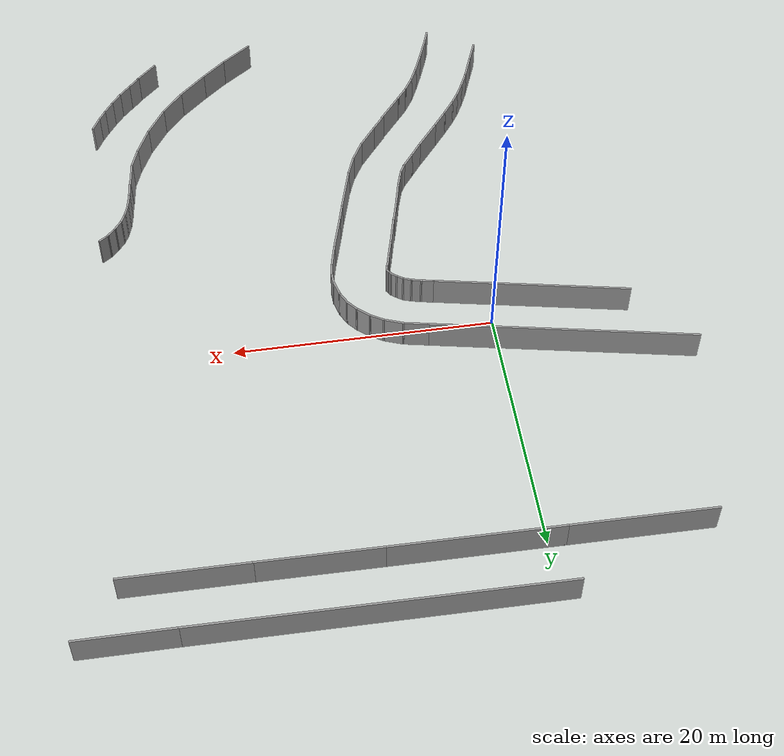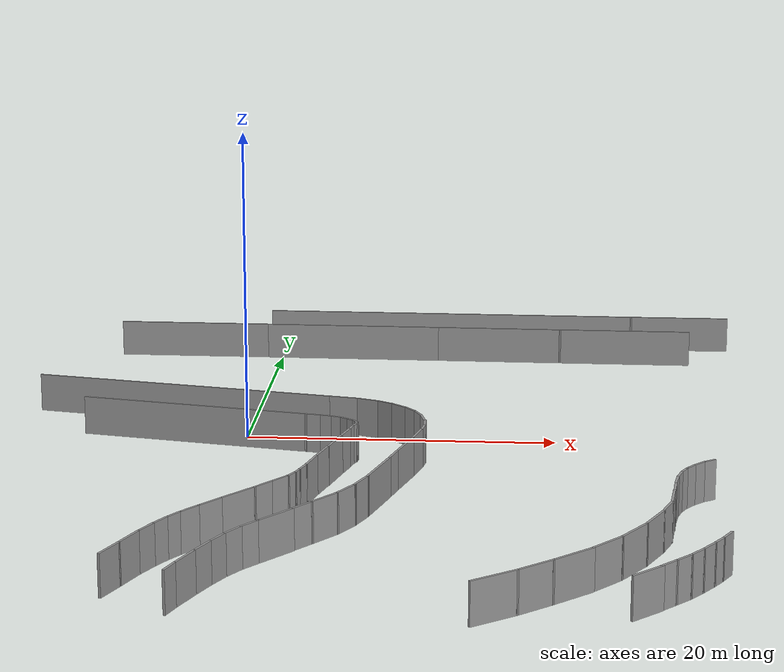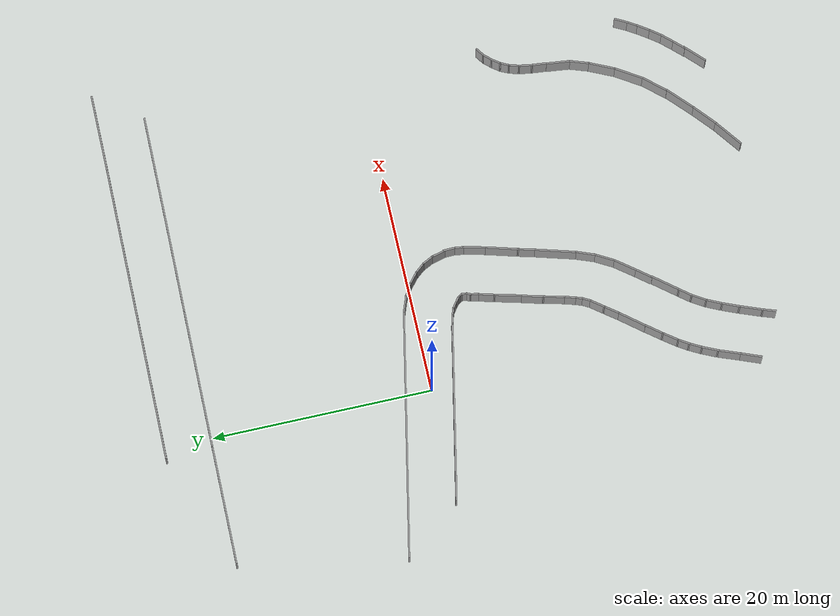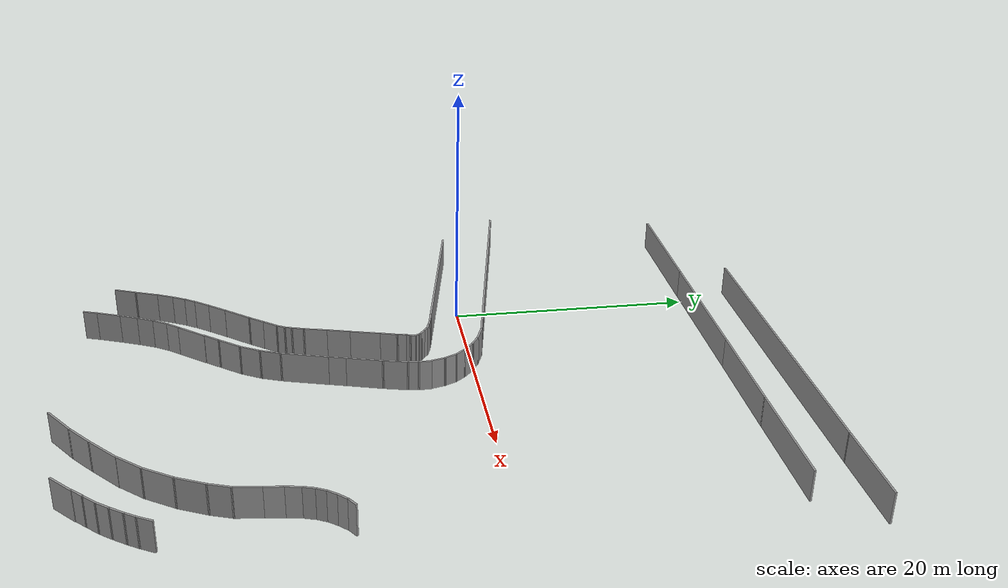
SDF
<sdf version="1.6">
 <model name="pista">
  <pose>-3.33646 -16.6519 0 0 -0 0</pose>
  <link name="Wall_158">
   <collision name="Wall_158_Collision">
    <geometry><box><size>2.03693 0.15 2.5</size></box></geometry>
    <pose>0 0 1.25 0 -0 0</pose>
   </collision>
   <visual name="Wall_158_Visual">
    <pose>0 0 1.25 0 -0 0</pose>
    <geometry><box><size>2.03693 0.15 2.5</size></box></geometry>
    <material>
     <script><uri>file://media/materials/scripts/gazebo.material</uri><name>Gazebo/Grey</name></script>
     <ambient>1 1 1 1</ambient>
    </material>
    <meta><layer>0</layer></meta>
   </visual>
   <pose>-0.280524 -11.705 0 0 -0 1.19552</pose>
  </link>
  <link name="Wall_159">
   <collision name="Wall_159_Collision">
    <geometry><box><size>2.17056 0.15 2.5</size></box></geometry>
    <pose>0 0 1.25 0 -0 0</pose>
   </collision>
   <visual name="Wall_159_Visual">
    <pose>0 0 1.25 0 -0 0</pose>
    <geometry><box><size>2.17056 0.15 2.5</size></box></geometry>
    <material>
     <script><uri>file://media/materials/scripts/gazebo.material</uri><name>Gazebo/Grey</name></script>
     <ambient>1 1 1 1</ambient>
    </material>
    <meta><layer>0</layer></meta>
   </visual>
   <pose>0.424381 -9.88293 0 0 -0 1.2074</pose>
  </link>
  <link name="Wall_160">
   <collision name="Wall_160_Collision">
    <geometry><box><size>1.61398 0.15 2.5</size></box></geometry>
    <pose>0 0 1.25 0 -0 0</pose>
   </collision>
   <visual name="Wall_160_Visual">
    <pose>0 0 1.25 0 -0 0</pose>
    <geometry><box><size>1.61398 0.15 2.5</size></box></geometry>
    <material>
     <script><uri>file://media/materials/scripts/gazebo.material</uri><name>Gazebo/Grey</name></script>
     <ambient>1 1 1 1</ambient>
    </material>
    <meta><layer>0</layer></meta>
   </visual>
   <pose>1.08939 -8.27362 0 0 -0 1.13966</pose>
  </link>
  <link name="Wall_161">
   <collision name="Wall_161_Collision">
    <geometry><box><size>1.32824 0.15 2.5</size></box></geometry>
    <pose>0 0 1.25 0 -0 0</pose>
   </collision>
   <visual name="Wall_161_Visual">
    <pose>0 0 1.25 0 -0 0</pose>
    <geometry><box><size>1.32824 0.15 2.5</size></box></geometry>
    <material>
     <script><uri>file://media/materials/scripts/gazebo.material</uri><name>Gazebo/Grey</name></script>
     <ambient>1 1 1 1</ambient>
    </material>
    <meta><layer>0</layer></meta>
   </visual>
   <pose>1.67459 -7.08991 0 0 -0 1.07685</pose>
  </link>
  <link name="Wall_162">
   <collision name="Wall_162_Collision">
    <geometry><box><size>1.19047 0.15 2.5</size></box></geometry>
    <pose>0 0 1.25 0 -0 0</pose>
   </collision>
   <visual name="Wall_162_Visual">
    <pose>0 0 1.25 0 -0 0</pose>
    <geometry><box><size>1.19047 0.15 2.5</size></box></geometry>
    <material>
     <script><uri>file://media/materials/scripts/gazebo.material</uri><name>Gazebo/Grey</name></script>
     <ambient>1 1 1 1</ambient>
    </material>
    <meta><layer>0</layer></meta>
   </visual>
   <pose>2.23319 -6.1323 0 0 -0 1.00407</pose>
  </link>
  <link name="Wall_163">
   <collision name="Wall_163_Collision">
    <geometry><box><size>1.63438 0.15 2.5</size></box></geometry>
    <pose>0 0 1.25 0 -0 0</pose>
   </collision>
   <visual name="Wall_163_Visual">
    <pose>0 0 1.25 0 -0 0</pose>
    <geometry><box><size>1.63438 0.15 2.5</size></box></geometry>
    <material>
     <script><uri>file://media/materials/scripts/gazebo.material</uri><name>Gazebo/Grey</name></script>
     <ambient>1 1 1 1</ambient>
    </material>
    <meta><layer>0</layer></meta>
   </visual>
   <pose>2.9514 -5.09489 0 0 -0 0.938048</pose>
  </link>
  <link name="Wall_164">
   <collision name="Wall_164_Collision">
    <geometry><box><size>1.83675 0.15 2.5</size></box></geometry>
    <pose>0 0 1.25 0 -0 0</pose>
   </collision>
   <visual name="Wall_164_Visual">
    <pose>0 0 1.25 0 -0 0</pose>
    <geometry><box><size>1.83675 0.15 2.5</size></box></geometry>
    <material>
     <script><uri>file://media/materials/scripts/gazebo.material</uri><name>Gazebo/Grey</name></script>
     <ambient>1 1 1 1</ambient>
    </material>
    <meta><layer>0</layer></meta>
   </visual>
   <pose>3.90901 -3.83138 0 0 -0 0.90837</pose>
  </link>
  <link name="Wall_166">
   <collision name="Wall_166_Collision">
    <geometry><box><size>2.70487 0.15 2.5</size></box></geometry>
    <pose>0 0 1.25 0 -0 0</pose>
   </collision>
   <visual name="Wall_166_Visual">
    <pose>0 0 1.25 0 -0 0</pose>
    <geometry><box><size>2.70487 0.15 2.5</size></box></geometry>
    <material>
     <script><uri>file://media/materials/scripts/gazebo.material</uri><name>Gazebo/Grey</name></script>
     <ambient>1 1 1 1</ambient>
    </material>
    <meta><layer>0</layer></meta>
   </visual>
   <pose>5.27892 -2.08907 0 0 -0 0.896055</pose>
  </link>
  <link name="Wall_167">
   <collision name="Wall_167_Collision">
    <geometry><box><size>1.57578 0.15 2.5</size></box></geometry>
    <pose>0 0 1.25 0 -0 0</pose>
   </collision>
   <visual name="Wall_167_Visual">
    <pose>0 0 1.25 0 -0 0</pose>
    <geometry><box><size>1.57578 0.15 2.5</size></box></geometry>
    <material>
     <script><uri>file://media/materials/scripts/gazebo.material</uri><name>Gazebo/Grey</name></script>
     <ambient>1 1 1 1</ambient>
    </material>
    <meta><layer>0</layer></meta>
   </visual>
   <pose>6.50253 -0.519659 0 0 -0 0.931027</pose>
  </link>
  <link name="Wall_168">
   <collision name="Wall_168_Collision">
    <geometry><box><size>1.51726 0.15 2.5</size></box></geometry>
    <pose>0 0 1.25 0 -0 0</pose>
   </collision>
   <visual name="Wall_168_Visual">
    <pose>0 0 1.25 0 -0 0</pose>
    <geometry><box><size>1.51726 0.15 2.5</size></box></geometry>
    <material>
     <script><uri>file://media/materials/scripts/gazebo.material</uri><name>Gazebo/Grey</name></script>
     <ambient>1 1 1 1</ambient>
    </material>
    <meta><layer>0</layer></meta>
   </visual>
   <pose>7.34043 0.597549 0 0 -0 0.923404</pose>
  </link>
  <link name="Wall_169">
   <collision name="Wall_169_Collision">
    <geometry><box><size>0.876044 0.15 2.5</size></box></geometry>
    <pose>0 0 1.25 0 -0 0</pose>
   </collision>
   <visual name="Wall_169_Visual">
    <pose>0 0 1.25 0 -0 0</pose>
    <geometry><box><size>0.876044 0.15 2.5</size></box></geometry>
    <material>
     <script><uri>file://media/materials/scripts/gazebo.material</uri><name>Gazebo/Grey</name></script>
     <ambient>1 1 1 1</ambient>
    </material>
    <meta><layer>0</layer></meta>
   </visual>
   <pose>7.92564 1.46206 0 0 -0 1.07437</pose>
  </link>
  <link name="Wall_170">
   <collision name="Wall_170_Collision">
    <geometry><box><size>0.738821 0.15 2.5</size></box></geometry>
    <pose>0 0 1.25 0 -0 0</pose>
   </collision>
   <visual name="Wall_170_Visual">
    <pose>0 0 1.25 0 -0 0</pose>
    <geometry><box><size>0.738821 0.15 2.5</size></box></geometry>
    <material>
     <script><uri>file://media/materials/scripts/gazebo.material</uri><name>Gazebo/Grey</name></script>
     <ambient>1 1 1 1</ambient>
    </material>
    <meta><layer>0</layer></meta>
   </visual>
   <pose>8.19164 2.06056 0 0 -0 1.24905</pose>
  </link>
  <link name="Wall_171">
   <collision name="Wall_171_Collision">
    <geometry><box><size>1.15131 0.15 2.5</size></box></geometry>
    <pose>0 0 1.25 0 -0 0</pose>
   </collision>
   <visual name="Wall_171_Visual">
    <pose>0 0 1.25 0 -0 0</pose>
    <geometry><box><size>1.15131 0.15 2.5</size></box></geometry>
    <material>
     <script><uri>file://media/materials/scripts/gazebo.material</uri><name>Gazebo/Grey</name></script>
     <ambient>1 1 1 1</ambient>
    </material>
    <meta><layer>0</layer></meta>
   </visual>
   <pose>8.43104 2.81867 0 0 -0 1.27425</pose>
  </link>
  <link name="Wall_172">
   <collision name="Wall_172_Collision">
    <geometry><box><size>2.06614 0.15 2.5</size></box></geometry>
    <pose>0 0 1.25 0 -0 0</pose>
   </collision>
   <visual name="Wall_172_Visual">
    <pose>0 0 1.25 0 -0 0</pose>
    <geometry><box><size>2.06614 0.15 2.5</size></box></geometry>
    <material>
     <script><uri>file://media/materials/scripts/gazebo.material</uri><name>Gazebo/Grey</name></script>
     <ambient>1 1 1 1</ambient>
    </material>
    <meta><layer>0</layer></meta>
   </visual>
   <pose>8.80344 4.22848 0 0 -0 1.33255</pose>
  </link>
  <link name="Wall_173">
   <collision name="Wall_173_Collision">
    <geometry><box><size>2.02111 0.15 2.5</size></box></geometry>
    <pose>0 0 1.25 0 -0 0</pose>
   </collision>
   <visual name="Wall_173_Visual">
    <pose>0 0 1.25 0 -0 0</pose>
    <geometry><box><size>2.02111 0.15 2.5</size></box></geometry>
    <material>
     <script><uri>file://media/materials/scripts/gazebo.material</uri><name>Gazebo/Grey</name></script>
     <ambient>1 1 1 1</ambient>
    </material>
    <meta><layer>0</layer></meta>
   </visual>
   <pose>9.26895 6.06389 0 0 -0 1.31202</pose>
  </link>
  <link name="Wall_175">
   <collision name="Wall_175_Collision">
    <geometry><box><size>2.53706 0.15 2.5</size></box></geometry>
    <pose>0 0 1.25 0 -0 0</pose>
   </collision>
   <visual name="Wall_175_Visual">
    <pose>0 0 1.25 0 -0 0</pose>
    <geometry><box><size>2.53706 0.15 2.5</size></box></geometry>
    <material>
     <script><uri>file://media/materials/scripts/gazebo.material</uri><name>Gazebo/Grey</name></script>
     <ambient>1 1 1 1</ambient>
    </material>
    <meta><layer>0</layer></meta>
   </visual>
   <pose>9.85415 8.23181 0 0 -0 1.32312</pose>
  </link>
  <link name="Wall_176">
   <collision name="Wall_176_Collision">
    <geometry><box><size>1.5568 0.15 2.5</size></box></geometry>
    <pose>0 0 1.25 0 -0 0</pose>
   </collision>
   <visual name="Wall_176_Visual">
    <pose>0 0 1.25 0 -0 0</pose>
    <geometry><box><size>1.5568 0.15 2.5</size></box></geometry>
    <material>
     <script><uri>file://media/materials/scripts/gazebo.material</uri><name>Gazebo/Grey</name></script>
     <ambient>1 1 1 1</ambient>
    </material>
    <meta><layer>0</layer></meta>
   </visual>
   <pose>10.333 10.0672 0 0 -0 1.30289</pose>
  </link>
  <link name="Wall_177">
   <collision name="Wall_177_Collision">
    <geometry><box><size>0.885725 0.15 2.5</size></box></geometry>
    <pose>0 0 1.25 0 -0 0</pose>
   </collision>
   <visual name="Wall_177_Visual">
    <pose>0 0 1.25 0 -0 0</pose>
    <geometry><box><size>0.885725 0.15 2.5</size></box></geometry>
    <material>
     <script><uri>file://media/materials/scripts/gazebo.material</uri><name>Gazebo/Grey</name></script>
     <ambient>1 1 1 1</ambient>
    </material>
    <meta><layer>0</layer></meta>
   </visual>
   <pose>10.599 11.1046 0 0 -0 1.35213</pose>
  </link>
  <link name="Wall_178">
   <collision name="Wall_178_Collision">
    <geometry><box><size>0.495803 0.15 2.5</size></box></geometry>
    <pose>0 0 1.25 0 -0 0</pose>
   </collision>
   <visual name="Wall_178_Visual">
    <pose>0 0 1.25 0 -0 0</pose>
    <geometry><box><size>0.495803 0.15 2.5</size></box></geometry>
    <material>
     <script><uri>file://media/materials/scripts/gazebo.material</uri><name>Gazebo/Grey</name></script>
     <ambient>1 1 1 1</ambient>
    </material>
    <meta><layer>0</layer></meta>
   </visual>
   <pose>10.7453 11.6233 0 0 -0 1.176</pose>
  </link>
  <link name="Wall_179">
   <collision name="Wall_179_Collision">
    <geometry><box><size>0.552534 0.15 2.5</size></box></geometry>
    <pose>0 0 1.25 0 -0 0</pose>
   </collision>
   <visual name="Wall_179_Visual">
    <pose>0 0 1.25 0 -0 0</pose>
    <geometry><box><size>0.552534 0.15 2.5</size></box></geometry>
    <material>
     <script><uri>file://media/materials/scripts/gazebo.material</uri><name>Gazebo/Grey</name></script>
     <ambient>1 1 1 1</ambient>
    </material>
    <meta><layer>0</layer></meta>
   </visual>
   <pose>10.8384 11.9824 0 0 -0 1.43824</pose>
  </link>
  <link name="Wall_180">
   <collision name="Wall_180_Collision">
    <geometry><box><size>0.423866 0.15 2.5</size></box></geometry>
    <pose>0 0 1.25 0 -0 0</pose>
   </collision>
   <visual name="Wall_180_Visual">
    <pose>0 0 1.25 0 -0 0</pose>
    <geometry><box><size>0.423866 0.15 2.5</size></box></geometry>
    <material>
     <script><uri>file://media/materials/scripts/gazebo.material</uri><name>Gazebo/Grey</name></script>
     <ambient>1 1 1 1</ambient>
    </material>
    <meta><layer>0</layer></meta>
   </visual>
   <pose>10.7985 12.3016 0 0 -0 2.07789</pose>
  </link>
  <link name="Wall_181">
   <collision name="Wall_181_Collision">
    <geometry><box><size>0.416002 0.15 2.5</size></box></geometry>
    <pose>0 0 1.25 0 -0 0</pose>
   </collision>
   <visual name="Wall_181_Visual">
    <pose>0 0 1.25 0 -0 0</pose>
    <geometry><box><size>0.416002 0.15 2.5</size></box></geometry>
    <material>
     <script><uri>file://media/materials/scripts/gazebo.material</uri><name>Gazebo/Grey</name></script>
     <ambient>1 1 1 1</ambient>
    </material>
    <meta><layer>0</layer></meta>
   </visual>
   <pose>10.6522 12.5277 0 0 -0 2.2143</pose>
  </link>
  <link name="Wall_182">
   <collision name="Wall_182_Collision">
    <geometry><box><size>0.623603 0.15 2.5</size></box></geometry>
    <pose>0 0 1.25 0 -0 0</pose>
   </collision>
   <visual name="Wall_182_Visual">
    <pose>0 0 1.25 0 -0 0</pose>
    <geometry><box><size>0.623603 0.15 2.5</size></box></geometry>
    <material>
     <script><uri>file://media/materials/scripts/gazebo.material</uri><name>Gazebo/Grey</name></script>
     <ambient>1 1 1 1</ambient>
    </material>
    <meta><layer>0</layer></meta>
   </visual>
   <pose>10.3862 12.7804 0 0 -0 2.47562</pose>
  </link>
  <link name="Wall_183">
   <collision name="Wall_183_Collision">
    <geometry><box><size>0.703514 0.15 2.5</size></box></geometry>
    <pose>0 0 1.25 0 -0 0</pose>
   </collision>
   <visual name="Wall_183_Visual">
    <pose>0 0 1.25 0 -0 0</pose>
    <geometry><box><size>0.703514 0.15 2.5</size></box></geometry>
    <material>
     <script><uri>file://media/materials/scripts/gazebo.material</uri><name>Gazebo/Grey</name></script>
     <ambient>1 1 1 1</ambient>
    </material>
    <meta><layer>0</layer></meta>
   </visual>
   <pose>9.97385 13.0863 0 0 -0 2.52693</pose>
  </link>
  <link name="Wall_184">
   <collision name="Wall_184_Collision">
    <geometry><box><size>0.797757 0.15 2.5</size></box></geometry>
    <pose>0 0 1.25 0 -0 0</pose>
   </collision>
   <visual name="Wall_184_Visual">
    <pose>0 0 1.25 0 -0 0</pose>
    <geometry><box><size>0.797757 0.15 2.5</size></box></geometry>
    <material>
     <script><uri>file://media/materials/scripts/gazebo.material</uri><name>Gazebo/Grey</name></script>
     <ambient>1 1 1 1</ambient>
    </material>
    <meta><layer>0</layer></meta>
   </visual>
   <pose>9.44185 13.3523 0 0 -0 2.80686</pose>
  </link>
  <link name="Wall_185">
   <collision name="Wall_185_Collision">
    <geometry><box><size>0.89195 0.15 2.5</size></box></geometry>
    <pose>0 0 1.25 0 -0 0</pose>
   </collision>
   <visual name="Wall_185_Visual">
    <pose>0 0 1.25 0 -0 0</pose>
    <geometry><box><size>0.89195 0.15 2.5</size></box></geometry>
    <material>
     <script><uri>file://media/materials/scripts/gazebo.material</uri><name>Gazebo/Grey</name></script>
     <ambient>1 1 1 1</ambient>
    </material>
    <meta><layer>0</layer></meta>
   </visual>
   <pose>8.77684 13.5518 0 0 -0 2.88792</pose>
  </link>
  <link name="Wall_186">
   <collision name="Wall_186_Collision">
    <geometry><box><size>1.12554 0.15 2.5</size></box></geometry>
    <pose>0 0 1.25 0 -0 0</pose>
   </collision>
   <visual name="Wall_186_Visual">
    <pose>0 0 1.25 0 -0 0</pose>
    <geometry><box><size>1.12554 0.15 2.5</size></box></geometry>
    <material>
     <script><uri>file://media/materials/scripts/gazebo.material</uri><name>Gazebo/Grey</name></script>
     <ambient>1 1 1 1</ambient>
    </material>
    <meta><layer>0</layer></meta>
   </visual>
   <pose>7.93894 13.738 0 0 -0 2.94955</pose>
  </link>
  <link name="Wall_187">
   <collision name="Wall_187_Collision">
    <geometry><box><size>15.216 0.15 2.5</size></box></geometry>
    <pose>0 0 1.25 0 -0 0</pose>
   </collision>
   <visual name="Wall_187_Visual">
    <pose>0 0 1.25 0 -0 0</pose>
    <geometry><box><size>15.216 0.15 2.5</size></box></geometry>
    <material>
     <script><uri>file://media/materials/scripts/gazebo.material</uri><name>Gazebo/Grey</name></script>
     <ambient>1 1 1 1</ambient>
    </material>
    <meta><layer>0</layer></meta>
   </visual>
   <pose>0.078578 15.3341 0 0 -0 2.94074</pose>
  </link>
  <link name="Wall_276">
   <collision name="Wall_276_Collision">
    <geometry><box><size>20.5057 0.15 2.5</size></box></geometry>
    <pose>0 0 1.25 0 -0 0</pose>
   </collision>
   <visual name="Wall_276_Visual">
    <pose>0 0 1.25 0 -0 0</pose>
    <geometry><box><size>20.5057 0.15 2.5</size></box></geometry>
    <material>
     <script><uri>file://media/materials/scripts/gazebo.material</uri><name>Gazebo/Grey</name></script>
     <ambient>1 1 1 1</ambient>
    </material>
    <meta><layer>0</layer></meta>
   </visual>
   <pose>-1.37614 20.0144 0 0 0 -0.199958</pose>
  </link>
  <link name="Wall_277">
   <collision name="Wall_277_Collision">
    <geometry><box><size>2.02281 0.15 2.5</size></box></geometry>
    <pose>0 0 1.25 0 -0 0</pose>
   </collision>
   <visual name="Wall_277_Visual">
    <pose>0 0 1.25 0 -0 0</pose>
    <geometry><box><size>2.02281 0.15 2.5</size></box></geometry>
    <material>
     <script><uri>file://media/materials/scripts/gazebo.material</uri><name>Gazebo/Grey</name></script>
     <ambient>1 1 1 1</ambient>
    </material>
    <meta><layer>0</layer></meta>
   </visual>
   <pose>9.51664 17.8066 0 0 0 -0.200181</pose>
  </link>
  <link name="Wall_278">
   <collision name="Wall_278_Collision">
    <geometry><box><size>1.65685 0.15 2.5</size></box></geometry>
    <pose>0 0 1.25 0 -0 0</pose>
   </collision>
   <visual name="Wall_278_Visual">
    <pose>0 0 1.25 0 -0 0</pose>
    <geometry><box><size>1.65685 0.15 2.5</size></box></geometry>
    <material>
     <script><uri>file://media/materials/scripts/gazebo.material</uri><name>Gazebo/Grey</name></script>
     <ambient>1 1 1 1</ambient>
    </material>
    <meta><layer>0</layer></meta>
   </visual>
   <pose>11.1393 17.3544 0 0 0 -0.360837</pose>
  </link>
  <link name="Wall_279">
   <collision name="Wall_279_Collision">
    <geometry><box><size>1.27226 0.15 2.5</size></box></geometry>
    <pose>0 0 1.25 0 -0 0</pose>
   </collision>
   <visual name="Wall_279_Visual">
    <pose>0 0 1.25 0 -0 0</pose>
    <geometry><box><size>1.27226 0.15 2.5</size></box></geometry>
    <material>
     <script><uri>file://media/materials/scripts/gazebo.material</uri><name>Gazebo/Grey</name></script>
     <ambient>1 1 1 1</ambient>
    </material>
    <meta><layer>0</layer></meta>
   </visual>
   <pose>12.323 16.7958 0 0 0 -0.548549</pose>
  </link>
  <link name="Wall_280">
   <collision name="Wall_280_Collision">
    <geometry><box><size>1.33871 0.15 2.5</size></box></geometry>
    <pose>0 0 1.25 0 -0 0</pose>
   </collision>
   <visual name="Wall_280_Visual">
    <pose>0 0 1.25 0 -0 0</pose>
    <geometry><box><size>1.33871 0.15 2.5</size></box></geometry>
    <material>
     <script><uri>file://media/materials/scripts/gazebo.material</uri><name>Gazebo/Grey</name></script>
     <ambient>1 1 1 1</ambient>
    </material>
    <meta><layer>0</layer></meta>
   </visual>
   <pose>13.254 16.1175 0 0 0 -0.706199</pose>
  </link>
  <link name="Wall_281">
   <collision name="Wall_281_Collision">
    <geometry><box><size>1.15131 0.15 2.5</size></box></geometry>
    <pose>0 0 1.25 0 -0 0</pose>
   </collision>
   <visual name="Wall_281_Visual">
    <pose>0 0 1.25 0 -0 0</pose>
    <geometry><box><size>1.15131 0.15 2.5</size></box></geometry>
    <material>
     <script><uri>file://media/materials/scripts/gazebo.material</uri><name>Gazebo/Grey</name></script>
     <ambient>1 1 1 1</ambient>
    </material>
    <meta><layer>0</layer></meta>
   </visual>
   <pose>14.0254 15.346 0 0 0 -0.879459</pose>
  </link>
  <link name="Wall_282">
   <collision name="Wall_282_Collision">
    <geometry><box><size>1.18502 0.15 2.5</size></box></geometry>
    <pose>0 0 1.25 0 -0 0</pose>
   </collision>
   <visual name="Wall_282_Visual">
    <pose>0 0 1.25 0 -0 0</pose>
    <geometry><box><size>1.18502 0.15 2.5</size></box></geometry>
    <material>
     <script><uri>file://media/materials/scripts/gazebo.material</uri><name>Gazebo/Grey</name></script>
     <ambient>1 1 1 1</ambient>
    </material>
    <meta><layer>0</layer></meta>
   </visual>
   <pose>14.5707 14.4948 0 0 0 -1.11864</pose>
  </link>
  <link name="Wall_283">
   <collision name="Wall_283_Collision">
    <geometry><box><size>1.33064 0.15 2.5</size></box></geometry>
    <pose>0 0 1.25 0 -0 0</pose>
   </collision>
   <visual name="Wall_283_Visual">
    <pose>0 0 1.25 0 -0 0</pose>
    <geometry><box><size>1.33064 0.15 2.5</size></box></geometry>
    <material>
     <script><uri>file://media/materials/scripts/gazebo.material</uri><name>Gazebo/Grey</name></script>
     <ambient>1 1 1 1</ambient>
    </material>
    <meta><layer>0</layer></meta>
   </visual>
   <pose>14.9431 13.4574 0 0 0 -1.32035</pose>
  </link>
  <link name="Wall_285">
   <collision name="Wall_285_Collision">
    <geometry><box><size>1.10761 0.15 2.5</size></box></geometry>
    <pose>0 0 1.25 0 -0 0</pose>
   </collision>
   <visual name="Wall_285_Visual">
    <pose>0 0 1.25 0 -0 0</pose>
    <geometry><box><size>1.10761 0.15 2.5</size></box></geometry>
    <material>
     <script><uri>file://media/materials/scripts/gazebo.material</uri><name>Gazebo/Grey</name></script>
     <ambient>1 1 1 1</ambient>
    </material>
    <meta><layer>0</layer></meta>
   </visual>
   <pose>15.1293 12.4067 0 0 0 -1.54303</pose>
  </link>
  <link name="Wall_286">
   <collision name="Wall_286_Collision">
    <geometry><box><size>0.981442 0.15 2.5</size></box></geometry>
    <pose>0 0 1.25 0 -0 0</pose>
   </collision>
   <visual name="Wall_286_Visual">
    <pose>0 0 1.25 0 -0 0</pose>
    <geometry><box><size>0.981442 0.15 2.5</size></box></geometry>
    <material>
     <script><uri>file://media/materials/scripts/gazebo.material</uri><name>Gazebo/Grey</name></script>
     <ambient>1 1 1 1</ambient>
    </material>
    <meta><layer>0</layer></meta>
   </visual>
   <pose>15.0894 11.5156 0 0 0 -1.69912</pose>
  </link>
  <link name="Wall_287">
   <collision name="Wall_287_Collision">
    <geometry><box><size>2.092 0.15 2.5</size></box></geometry>
    <pose>0 0 1.25 0 -0 0</pose>
   </collision>
   <visual name="Wall_287_Visual">
    <pose>0 0 1.25 0 -0 0</pose>
    <geometry><box><size>2.092 0.15 2.5</size></box></geometry>
    <material>
     <script><uri>file://media/materials/scripts/gazebo.material</uri><name>Gazebo/Grey</name></script>
     <ambient>1 1 1 1</ambient>
    </material>
    <meta><layer>0</layer></meta>
   </visual>
   <pose>14.8101 10.159 0 0 0 -1.80581</pose>
  </link>
  <link name="Wall_288">
   <collision name="Wall_288_Collision">
    <geometry><box><size>3.08037 0.15 2.5</size></box></geometry>
    <pose>0 0 1.25 0 -0 0</pose>
   </collision>
   <visual name="Wall_288_Visual">
    <pose>0 0 1.25 0 -0 0</pose>
    <geometry><box><size>3.08037 0.15 2.5</size></box></geometry>
    <material>
     <script><uri>file://media/materials/scripts/gazebo.material</uri><name>Gazebo/Grey</name></script>
     <ambient>1 1 1 1</ambient>
    </material>
    <meta><layer>0</layer></meta>
   </visual>
   <pose>14.185 7.80489 0 0 0 -1.8466</pose>
  </link>
  <link name="Wall_289">
   <collision name="Wall_289_Collision">
    <geometry><box><size>1.58247 0.15 2.5</size></box></geometry>
    <pose>0 0 1.25 0 -0 0</pose>
   </collision>
   <visual name="Wall_289_Visual">
    <pose>0 0 1.25 0 -0 0</pose>
    <geometry><box><size>1.58247 0.15 2.5</size></box></geometry>
    <material>
     <script><uri>file://media/materials/scripts/gazebo.material</uri><name>Gazebo/Grey</name></script>
     <ambient>1 1 1 1</ambient>
    </material>
    <meta><layer>0</layer></meta>
   </visual>
   <pose>13.5998 5.70348 0 0 0 -1.83379</pose>
  </link>
  <link name="Wall_291">
   <collision name="Wall_291_Collision">
    <geometry><box><size>3.91344 0.15 2.5</size></box></geometry>
    <pose>0 0 1.25 0 -0 0</pose>
   </collision>
   <visual name="Wall_291_Visual">
    <pose>0 0 1.25 0 -0 0</pose>
    <geometry><box><size>3.91344 0.15 2.5</size></box></geometry>
    <material>
     <script><uri>file://media/materials/scripts/gazebo.material</uri><name>Gazebo/Grey</name></script>
     <ambient>1 1 1 1</ambient>
    </material>
    <meta><layer>0</layer></meta>
   </visual>
   <pose>12.8949 3.17646 0 0 0 -1.85007</pose>
  </link>
  <link name="Wall_292">
   <collision name="Wall_292_Collision">
    <geometry><box><size>1.85926 0.15 2.5</size></box></geometry>
    <pose>0 0 1.25 0 -0 0</pose>
   </collision>
   <visual name="Wall_292_Visual">
    <pose>0 0 1.25 0 -0 0</pose>
    <geometry><box><size>1.85926 0.15 2.5</size></box></geometry>
    <material>
     <script><uri>file://media/materials/scripts/gazebo.material</uri><name>Gazebo/Grey</name></script>
     <ambient>1 1 1 1</ambient>
    </material>
    <meta><layer>0</layer></meta>
   </visual>
   <pose>12.0703 0.569639 0 0 0 -1.93685</pose>
  </link>
  <link name="Wall_293">
   <collision name="Wall_293_Collision">
    <geometry><box><size>1.94822 0.15 2.5</size></box></geometry>
    <pose>0 0 1.25 0 -0 0</pose>
   </collision>
   <visual name="Wall_293_Visual">
    <pose>0 0 1.25 0 -0 0</pose>
    <geometry><box><size>1.94822 0.15 2.5</size></box></geometry>
    <material>
     <script><uri>file://media/materials/scripts/gazebo.material</uri><name>Gazebo/Grey</name></script>
     <ambient>1 1 1 1</ambient>
    </material>
    <meta><layer>0</layer></meta>
   </visual>
   <pose>11.3255 -1.01307 0 0 0 -2.08077</pose>
  </link>
  <link name="Wall_294">
   <collision name="Wall_294_Collision">
    <geometry><box><size>2.2568 0.15 2.5</size></box></geometry>
    <pose>0 0 1.25 0 -0 0</pose>
   </collision>
   <visual name="Wall_294_Visual">
    <pose>0 0 1.25 0 -0 0</pose>
    <geometry><box><size>2.2568 0.15 2.5</size></box></geometry>
    <material>
     <script><uri>file://media/materials/scripts/gazebo.material</uri><name>Gazebo/Grey</name></script>
     <ambient>1 1 1 1</ambient>
    </material>
    <meta><layer>0</layer></meta>
   </visual>
   <pose>10.2481 -2.63569 0 0 0 -2.22187</pose>
  </link>
  <link name="Wall_295">
   <collision name="Wall_295_Collision">
    <geometry><box><size>1.70378 0.15 2.5</size></box></geometry>
    <pose>0 0 1.25 0 -0 0</pose>
   </collision>
   <visual name="Wall_295_Visual">
    <pose>0 0 1.25 0 -0 0</pose>
    <geometry><box><size>1.70378 0.15 2.5</size></box></geometry>
    <material>
     <script><uri>file://media/materials/scripts/gazebo.material</uri><name>Gazebo/Grey</name></script>
     <ambient>1 1 1 1</ambient>
    </material>
    <meta><layer>0</layer></meta>
   </visual>
   <pose>9.13094 -4.0854 0 0 0 -2.23484</pose>
  </link>
  <link name="Wall_297">
   <collision name="Wall_297_Collision">
    <geometry><box><size>2.8378 0.15 2.5</size></box></geometry>
    <pose>0 0 1.25 0 -0 0</pose>
   </collision>
   <visual name="Wall_297_Visual">
    <pose>0 0 1.25 0 -0 0</pose>
    <geometry><box><size>2.8378 0.15 2.5</size></box></geometry>
    <material>
     <script><uri>file://media/materials/scripts/gazebo.material</uri><name>Gazebo/Grey</name></script>
     <ambient>1 1 1 1</ambient>
    </material>
    <meta><layer>0</layer></meta>
   </visual>
   <pose>7.84083 -5.77451 0 0 0 -2.24399</pose>
  </link>
  <link name="Wall_298">
   <collision name="Wall_298_Collision">
    <geometry><box><size>1.40049 0.15 2.5</size></box></geometry>
    <pose>0 0 1.25 0 -0 0</pose>
   </collision>
   <visual name="Wall_298_Visual">
    <pose>0 0 1.25 0 -0 0</pose>
    <geometry><box><size>1.40049 0.15 2.5</size></box></geometry>
    <material>
     <script><uri>file://media/materials/scripts/gazebo.material</uri><name>Gazebo/Grey</name></script>
     <ambient>1 1 1 1</ambient>
    </material>
    <meta><layer>0</layer></meta>
   </visual>
   <pose>6.61722 -7.31732 0 0 0 -2.23557</pose>
  </link>
  <link name="Wall_299">
   <collision name="Wall_299_Collision">
    <geometry><box><size>1.5232 0.15 2.5</size></box></geometry>
    <pose>0 0 1.25 0 -0 0</pose>
   </collision>
   <visual name="Wall_299_Visual">
    <pose>0 0 1.25 0 -0 0</pose>
    <geometry><box><size>1.5232 0.15 2.5</size></box></geometry>
    <material>
     <script><uri>file://media/materials/scripts/gazebo.material</uri><name>Gazebo/Grey</name></script>
     <ambient>1 1 1 1</ambient>
    </material>
    <meta><layer>0</layer></meta>
   </visual>
   <pose>5.87241 -8.39463 0 0 0 -2.12118</pose>
  </link>
  <link name="Wall_300">
   <collision name="Wall_300_Collision">
    <geometry><box><size>1.58986 0.15 2.5</size></box></geometry>
    <pose>0 0 1.25 0 -0 0</pose>
   </collision>
   <visual name="Wall_300_Visual">
    <pose>0 0 1.25 0 -0 0</pose>
    <geometry><box><size>1.58986 0.15 2.5</size></box></geometry>
    <material>
     <script><uri>file://media/materials/scripts/gazebo.material</uri><name>Gazebo/Grey</name></script>
     <ambient>1 1 1 1</ambient>
    </material>
    <meta><layer>0</layer></meta>
   </visual>
   <pose>5.20741 -9.63154 0 0 0 -2.00966</pose>
  </link>
  <link name="Wall_301">
   <collision name="Wall_301_Collision">
    <geometry><box><size>1.73578 0.15 2.5</size></box></geometry>
    <pose>0 0 1.25 0 -0 0</pose>
   </collision>
   <visual name="Wall_301_Visual">
    <pose>0 0 1.25 0 -0 0</pose>
    <geometry><box><size>1.73578 0.15 2.5</size></box></geometry>
    <material>
     <script><uri>file://media/materials/scripts/gazebo.material</uri><name>Gazebo/Grey</name></script>
     <ambient>1 1 1 1</ambient>
    </material>
    <meta><layer>0</layer></meta>
   </visual>
   <pose>4.5956 -11.0147 0 0 0 -1.96688</pose>
  </link>
  <link name="Wall_302">
   <collision name="Wall_302_Collision">
    <geometry><box><size>2.22975 0.15 2.5</size></box></geometry>
    <pose>0 0 1.25 0 -0 0</pose>
   </collision>
   <visual name="Wall_302_Visual">
    <pose>0 0 1.25 0 -0 0</pose>
    <geometry><box><size>2.22975 0.15 2.5</size></box></geometry>
    <material>
     <script><uri>file://media/materials/scripts/gazebo.material</uri><name>Gazebo/Grey</name></script>
     <ambient>1 1 1 1</ambient>
    </material>
    <meta><layer>0</layer></meta>
   </visual>
   <pose>3.9173 -12.7172 0 0 0 -1.93705</pose>
  </link>
  <link name="Wall_303">
   <collision name="Wall_303_Collision">
    <geometry><box><size>1.30244 0.15 2.5</size></box></geometry>
    <pose>0 0 1.25 0 -0 0</pose>
   </collision>
   <visual name="Wall_303_Visual">
    <pose>0 0 1.25 0 -0 0</pose>
    <geometry><box><size>1.30244 0.15 2.5</size></box></geometry>
    <material>
     <script><uri>file://media/materials/scripts/gazebo.material</uri><name>Gazebo/Grey</name></script>
     <ambient>1 1 1 1</ambient>
    </material>
    <meta><layer>0</layer></meta>
   </visual>
   <pose>3.35869 -14.2334 0 0 0 -1.89985</pose>
  </link>
  <link name="Wall_345">
   <collision name="Wall_345_Collision">
    <geometry><box><size>3.07602 0.15 2.5</size></box></geometry>
    <pose>0 0 1.25 0 -0 0</pose>
   </collision>
   <visual name="Wall_345_Visual">
    <pose>0 0 1.25 0 -0 0</pose>
    <geometry><box><size>3.07602 0.15 2.5</size></box></geometry>
    <material>
     <script><uri>file://media/materials/scripts/gazebo.material</uri><name>Gazebo/Grey</name></script>
     <ambient>1 1 1 1</ambient>
    </material>
    <meta><layer>0</layer></meta>
   </visual>
   <pose>20.1206 -14.4772 0 0 -0 0.643501</pose>
  </link>
  <link name="Wall_346">
   <collision name="Wall_346_Collision">
    <geometry><box><size>2.58228 0.15 2.5</size></box></geometry>
    <pose>0 0 1.25 0 -0 0</pose>
   </collision>
   <visual name="Wall_346_Visual">
    <pose>0 0 1.25 0 -0 0</pose>
    <geometry><box><size>2.58228 0.15 2.5</size></box></geometry>
    <material>
     <script><uri>file://media/materials/scripts/gazebo.material</uri><name>Gazebo/Grey</name></script>
     <ambient>1 1 1 1</ambient>
    </material>
    <meta><layer>0</layer></meta>
   </visual>
   <pose>22.2087 -12.8014 0 0 -0 0.715744</pose>
  </link>
  <link name="Wall_347">
   <collision name="Wall_347_Collision">
    <geometry><box><size>3.06694 0.15 2.5</size></box></geometry>
    <pose>0 0 1.25 0 -0 0</pose>
   </collision>
   <visual name="Wall_347_Visual">
    <pose>0 0 1.25 0 -0 0</pose>
    <geometry><box><size>3.06694 0.15 2.5</size></box></geometry>
    <material>
     <script><uri>file://media/materials/scripts/gazebo.material</uri><name>Gazebo/Grey</name></script>
     <ambient>1 1 1 1</ambient>
    </material>
    <meta><layer>0</layer></meta>
   </visual>
   <pose>24.1904 -11.0058 0 0 -0 0.753151</pose>
  </link>
  <link name="Wall_349">
   <collision name="Wall_349_Collision">
    <geometry><box><size>2.56491 0.15 2.5</size></box></geometry>
    <pose>0 0 1.25 0 -0 0</pose>
   </collision>
   <visual name="Wall_349_Visual">
    <pose>0 0 1.25 0 -0 0</pose>
    <geometry><box><size>2.56491 0.15 2.5</size></box></geometry>
    <material>
     <script><uri>file://media/materials/scripts/gazebo.material</uri><name>Gazebo/Grey</name></script>
     <ambient>1 1 1 1</ambient>
    </material>
    <meta><layer>0</layer></meta>
   </visual>
   <pose>26.0391 -9.06403 0 0 -0 0.863365</pose>
  </link>
  <link name="Wall_350">
   <collision name="Wall_350_Collision">
    <geometry><box><size>2.792 0.15 2.5</size></box></geometry>
    <pose>0 0 1.25 0 -0 0</pose>
   </collision>
   <visual name="Wall_350_Visual">
    <pose>0 0 1.25 0 -0 0</pose>
    <geometry><box><size>2.792 0.15 2.5</size></box></geometry>
    <material>
     <script><uri>file://media/materials/scripts/gazebo.material</uri><name>Gazebo/Grey</name></script>
     <ambient>1 1 1 1</ambient>
    </material>
    <meta><layer>0</layer></meta>
   </visual>
   <pose>27.5287 -7.02912 0 0 -0 1.00793</pose>
  </link>
  <link name="Wall_351">
   <collision name="Wall_351_Collision">
    <geometry><box><size>2.55405 0.15 2.5</size></box></geometry>
    <pose>0 0 1.25 0 -0 0</pose>
   </collision>
   <visual name="Wall_351_Visual">
    <pose>0 0 1.25 0 -0 0</pose>
    <geometry><box><size>2.55405 0.15 2.5</size></box></geometry>
    <material>
     <script><uri>file://media/materials/scripts/gazebo.material</uri><name>Gazebo/Grey</name></script>
     <ambient>1 1 1 1</ambient>
    </material>
    <meta><layer>0</layer></meta>
   </visual>
   <pose>28.739 -4.8213 0 0 -0 1.13684</pose>
  </link>
  <link name="Wall_352">
   <collision name="Wall_352_Collision">
    <geometry><box><size>1.86607 0.15 2.5</size></box></geometry>
    <pose>0 0 1.25 0 -0 0</pose>
   </collision>
   <visual name="Wall_352_Visual">
    <pose>0 0 1.25 0 -0 0</pose>
    <geometry><box><size>1.86607 0.15 2.5</size></box></geometry>
    <material>
     <script><uri>file://media/materials/scripts/gazebo.material</uri><name>Gazebo/Grey</name></script>
     <ambient>1 1 1 1</ambient>
    </material>
    <meta><layer>0</layer></meta>
   </visual>
   <pose>29.5237 -2.91939 0 0 -0 1.23924</pose>
  </link>
  <link name="Wall_353">
   <collision name="Wall_353_Collision">
    <geometry><box><size>2.21216 0.15 2.5</size></box></geometry>
    <pose>0 0 1.25 0 -0 0</pose>
   </collision>
   <visual name="Wall_353_Visual">
    <pose>0 0 1.25 0 -0 0</pose>
    <geometry><box><size>2.21216 0.15 2.5</size></box></geometry>
    <material>
     <script><uri>file://media/materials/scripts/gazebo.material</uri><name>Gazebo/Grey</name></script>
     <ambient>1 1 1 1</ambient>
    </material>
    <meta><layer>0</layer></meta>
   </visual>
   <pose>29.9228 -1.08397 0 0 -0 1.45444</pose>
  </link>
  <link name="Wall_355">
   <collision name="Wall_355_Collision">
    <geometry><box><size>1.48664 0.15 2.5</size></box></geometry>
    <pose>0 0 1.25 0 -0 0</pose>
   </collision>
   <visual name="Wall_355_Visual">
    <pose>0 0 1.25 0 -0 0</pose>
    <geometry><box><size>1.48664 0.15 2.5</size></box></geometry>
    <material>
     <script><uri>file://media/materials/scripts/gazebo.material</uri><name>Gazebo/Grey</name></script>
     <ambient>1 1 1 1</ambient>
    </material>
    <meta><layer>0</layer></meta>
   </visual>
   <pose>30.1356 0.658341 0 0 -0 1.47113</pose>
  </link>
  <link name="Wall_356">
   <collision name="Wall_356_Collision">
    <geometry><box><size>1.30886 0.15 2.5</size></box></geometry>
    <pose>0 0 1.25 0 -0 0</pose>
   </collision>
   <visual name="Wall_356_Visual">
    <pose>0 0 1.25 0 -0 0</pose>
    <geometry><box><size>1.30886 0.15 2.5</size></box></geometry>
    <material>
     <script><uri>file://media/materials/scripts/gazebo.material</uri><name>Gazebo/Grey</name></script>
     <ambient>1 1 1 1</ambient>
    </material>
    <meta><layer>0</layer></meta>
   </visual>
   <pose>30.2952 1.89525 0 0 -0 1.40942</pose>
  </link>
  <link name="Wall_357">
   <collision name="Wall_357_Collision">
    <geometry><box><size>1.06723 0.15 2.5</size></box></geometry>
    <pose>0 0 1.25 0 -0 0</pose>
   </collision>
   <visual name="Wall_357_Visual">
    <pose>0 0 1.25 0 -0 0</pose>
    <geometry><box><size>1.06723 0.15 2.5</size></box></geometry>
    <material>
     <script><uri>file://media/materials/scripts/gazebo.material</uri><name>Gazebo/Grey</name></script>
     <ambient>1 1 1 1</ambient>
    </material>
    <meta><layer>0</layer></meta>
   </visual>
   <pose>30.5213 2.90606 0 0 -0 1.27656</pose>
  </link>
  <link name="Wall_358">
   <collision name="Wall_358_Collision">
    <geometry><box><size>0.947119 0.15 2.5</size></box></geometry>
    <pose>0 0 1.25 0 -0 0</pose>
   </collision>
   <visual name="Wall_358_Visual">
    <pose>0 0 1.25 0 -0 0</pose>
    <geometry><box><size>0.947119 0.15 2.5</size></box></geometry>
    <material>
     <script><uri>file://media/materials/scripts/gazebo.material</uri><name>Gazebo/Grey</name></script>
     <ambient>1 1 1 1</ambient>
    </material>
    <meta><layer>0</layer></meta>
   </visual>
   <pose>30.8272 3.70406 0 0 -0 1.12207</pose>
  </link>
  <link name="Wall_359">
   <collision name="Wall_359_Collision">
    <geometry><box><size>1.00659 0.15 2.5</size></box></geometry>
    <pose>0 0 1.25 0 -0 0</pose>
   </collision>
   <visual name="Wall_359_Visual">
    <pose>0 0 1.25 0 -0 0</pose>
    <geometry><box><size>1.00659 0.15 2.5</size></box></geometry>
    <material>
     <script><uri>file://media/materials/scripts/gazebo.material</uri><name>Gazebo/Grey</name></script>
     <ambient>1 1 1 1</ambient>
    </material>
    <meta><layer>0</layer></meta>
   </visual>
   <pose>31.2528 4.40897 0 0 -0 0.939717</pose>
  </link>
  <link name="Wall_360">
   <collision name="Wall_360_Collision">
    <geometry><box><size>1.01604 0.15 2.5</size></box></geometry>
    <pose>0 0 1.25 0 -0 0</pose>
   </collision>
   <visual name="Wall_360_Visual">
    <pose>0 0 1.25 0 -0 0</pose>
    <geometry><box><size>1.01604 0.15 2.5</size></box></geometry>
    <material>
     <script><uri>file://media/materials/scripts/gazebo.material</uri><name>Gazebo/Grey</name></script>
     <ambient>1 1 1 1</ambient>
    </material>
    <meta><layer>0</layer></meta>
   </visual>
   <pose>31.7981 5.07397 0 0 -0 0.828849</pose>
  </link>
  <link name="Wall_361">
   <collision name="Wall_361_Collision">
    <geometry><box><size>0.932335 0.15 2.5</size></box></geometry>
    <pose>0 0 1.25 0 -0 0</pose>
   </collision>
   <visual name="Wall_361_Visual">
    <pose>0 0 1.25 0 -0 0</pose>
    <geometry><box><size>0.932335 0.15 2.5</size></box></geometry>
    <material>
     <script><uri>file://media/materials/scripts/gazebo.material</uri><name>Gazebo/Grey</name></script>
     <ambient>1 1 1 1</ambient>
    </material>
    <meta><layer>0</layer></meta>
   </visual>
   <pose>32.4099 5.61928 0 0 -0 0.616297</pose>
  </link>
  <link name="Wall_395">
   <collision name="Wall_395_Collision">
    <geometry><box><size>9.46041 0.15 2.5</size></box></geometry>
    <pose>0 0 1.25 0 -0 0</pose>
   </collision>
   <visual name="Wall_395_Visual">
    <pose>0 0 1.25 0 -0 0</pose>
    <geometry><box><size>9.46041 0.15 2.5</size></box></geometry>
    <material>
     <script><uri>file://media/materials/scripts/gazebo.material</uri><name>Gazebo/Grey</name></script>
     <ambient>1 1 1 1</ambient>
    </material>
    <meta><layer>0</layer></meta>
   </visual>
   <pose>28.34 36.5686 0 0 -0 3.13016</pose>
  </link>
  <link name="Wall_396">
   <collision name="Wall_396_Collision">
    <geometry><box><size>9.0883 0.15 2.5</size></box></geometry>
    <pose>0 0 1.25 0 -0 0</pose>
   </collision>
   <visual name="Wall_396_Visual">
    <pose>0 0 1.25 0 -0 0</pose>
    <geometry><box><size>9.0883 0.15 2.5</size></box></geometry>
    <material>
     <script><uri>file://media/materials/scripts/gazebo.material</uri><name>Gazebo/Grey</name></script>
     <ambient>1 1 1 1</ambient>
    </material>
    <meta><layer>0</layer></meta>
   </visual>
   <pose>19.2162 36.6883 0 0 -0 3.12671</pose>
  </link>
  <link name="Wall_398">
   <collision name="Wall_398_Collision">
    <geometry><box><size>12.7329 0.15 2.5</size></box></geometry>
    <pose>0 0 1.25 0 -0 0</pose>
   </collision>
   <visual name="Wall_398_Visual">
    <pose>0 0 1.25 0 -0 0</pose>
    <geometry><box><size>12.7329 0.15 2.5</size></box></geometry>
    <material>
     <script><uri>file://media/materials/scripts/gazebo.material</uri><name>Gazebo/Grey</name></script>
     <ambient>1 1 1 1</ambient>
    </material>
    <meta><layer>0</layer></meta>
   </visual>
   <pose>8.42979 36.8346 0 0 -0 3.12891</pose>
  </link>
  <link name="Wall_399">
   <collision name="Wall_399_Collision">
    <geometry><box><size>10.8438 0.15 2.5</size></box></geometry>
    <pose>0 0 1.25 0 -0 0</pose>
   </collision>
   <visual name="Wall_399_Visual">
    <pose>0 0 1.25 0 -0 0</pose>
    <geometry><box><size>10.8438 0.15 2.5</size></box></geometry>
    <material>
     <script><uri>file://media/materials/scripts/gazebo.material</uri><name>Gazebo/Grey</name></script>
     <ambient>1 1 1 1</ambient>
    </material>
    <meta><layer>0</layer></meta>
   </visual>
   <pose>-3.2078 36.9809 0 0 -0 3.12915</pose>
  </link>
  <link name="Wall_5">
   <collision name="Wall_5_Collision">
    <geometry><box><size>27.045 0.15 2.5</size></box></geometry>
    <pose>0 0 1.25 0 -0 0</pose>
   </collision>
   <visual name="Wall_5_Visual">
    <pose>0 0 1.25 0 -0 0</pose>
    <geometry><box><size>27.045 0.15 2.5</size></box></geometry>
    <material>
     <script><uri>file://media/materials/scripts/gazebo.material</uri><name>Gazebo/Grey</name></script>
     <ambient>1 1 1 1</ambient>
    </material>
    <meta><layer>0</layer></meta>
   </visual>
   <pose>15.5393 40.9638 0 0 0 -0.012858</pose>
  </link>
  <link name="Wall_71">
   <collision name="Wall_71_Collision">
    <geometry><box><size>1.31678 0.15 2.5</size></box></geometry>
    <pose>0 0 1.25 0 -0 0</pose>
   </collision>
   <visual name="Wall_71_Visual">
    <pose>0 0 1.25 0 -0 0</pose>
    <geometry><box><size>1.31678 0.15 2.5</size></box></geometry>
    <material>
     <script><uri>file://media/materials/scripts/gazebo.material</uri><name>Gazebo/Grey</name></script>
     <ambient>1 1 1 1</ambient>
    </material>
    <meta><layer>0</layer></meta>
   </visual>
   <pose>29.1378 -12.0675 0 0 -0 0.817645</pose>
  </link>
  <link name="Wall_72">
   <collision name="Wall_72_Collision">
    <geometry><box><size>1.3739 0.15 2.5</size></box></geometry>
    <pose>0 0 1.25 0 -0 0</pose>
   </collision>
   <visual name="Wall_72_Visual">
    <pose>0 0 1.25 0 -0 0</pose>
    <geometry><box><size>1.3739 0.15 2.5</size></box></geometry>
    <material>
     <script><uri>file://media/materials/scripts/gazebo.material</uri><name>Gazebo/Grey</name></script>
     <ambient>1 1 1 1</ambient>
    </material>
    <meta><layer>0</layer></meta>
   </visual>
   <pose>29.9491 -11.1897 0 0 -0 0.831519</pose>
  </link>
  <link name="Wall_73">
   <collision name="Wall_73_Collision">
    <geometry><box><size>1.30978 0.15 2.5</size></box></geometry>
    <pose>0 0 1.25 0 -0 0</pose>
   </collision>
   <visual name="Wall_73_Visual">
    <pose>0 0 1.25 0 -0 0</pose>
    <geometry><box><size>1.30978 0.15 2.5</size></box></geometry>
    <material>
     <script><uri>file://media/materials/scripts/gazebo.material</uri><name>Gazebo/Grey</name></script>
     <ambient>1 1 1 1</ambient>
    </material>
    <meta><layer>0</layer></meta>
   </visual>
   <pose>30.7072 -10.272 0 0 -0 0.931882</pose>
  </link>
  <link name="Wall_74">
   <collision name="Wall_74_Collision">
    <geometry><box><size>1.33781 0.15 2.5</size></box></geometry>
    <pose>0 0 1.25 0 -0 0</pose>
   </collision>
   <visual name="Wall_74_Visual">
    <pose>0 0 1.25 0 -0 0</pose>
    <geometry><box><size>1.33781 0.15 2.5</size></box></geometry>
    <material>
     <script><uri>file://media/materials/scripts/gazebo.material</uri><name>Gazebo/Grey</name></script>
     <ambient>1 1 1 1</ambient>
    </material>
    <meta><layer>0</layer></meta>
   </visual>
   <pose>31.3855 -9.31438 0 0 -0 0.976583</pose>
  </link>
  <link name="Wall_75">
   <collision name="Wall_75_Collision">
    <geometry><box><size>1.11716 0.15 2.5</size></box></geometry>
    <pose>0 0 1.25 0 -0 0</pose>
   </collision>
   <visual name="Wall_75_Visual">
    <pose>0 0 1.25 0 -0 0</pose>
    <geometry><box><size>1.11716 0.15 2.5</size></box></geometry>
    <material>
     <script><uri>file://media/materials/scripts/gazebo.material</uri><name>Gazebo/Grey</name></script>
     <ambient>1 1 1 1</ambient>
    </material>
    <meta><layer>0</layer></meta>
   </visual>
   <pose>31.9707 -8.40998 0 0 -0 1.02094</pose>
  </link>
  <link name="Wall_76">
   <collision name="Wall_76_Collision">
    <geometry><box><size>1.29226 0.15 2.5</size></box></geometry>
    <pose>0 0 1.25 0 -0 0</pose>
   </collision>
   <visual name="Wall_76_Visual">
    <pose>0 0 1.25 0 -0 0</pose>
    <geometry><box><size>1.29226 0.15 2.5</size></box></geometry>
    <material>
     <script><uri>file://media/materials/scripts/gazebo.material</uri><name>Gazebo/Grey</name></script>
     <ambient>1 1 1 1</ambient>
    </material>
    <meta><layer>0</layer></meta>
   </visual>
   <pose>32.4894 -7.49227 0 0 -0 1.08632</pose>
  </link>
  <link name="Wall_8">
   <collision name="Wall_8_Collision">
    <geometry><box><size>7.2261 0.15 2.5</size></box></geometry>
    <pose>0 0 1.25 0 -0 0</pose>
   </collision>
   <visual name="Wall_8_Visual">
    <pose>0 0 1.25 0 -0 0</pose>
    <geometry><box><size>7.2261 0.15 2.5</size></box></geometry>
    <material>
     <script><uri>file://media/materials/scripts/gazebo.material</uri><name>Gazebo/Grey</name></script>
     <ambient>1 1 1 1</ambient>
    </material>
    <meta><layer>0</layer></meta>
   </visual>
   <pose>32.5235 40.7643 0 0 0 -0.007519</pose>
  </link>
  <link name="Wall_81">
   <collision name="Wall_81_Collision">
    <geometry><box><size>2.35075 0.15 2.5</size></box></geometry>
    <pose>0 0 1.25 0 -0 0</pose>
   </collision>
   <visual name="Wall_81_Visual">
    <pose>0 0 1.25 0 -0 0</pose>
    <geometry><box><size>2.35075 0.15 2.5</size></box></geometry>
    <material>
     <script><uri>file://media/materials/scripts/gazebo.material</uri><name>Gazebo/Grey</name></script>
     <ambient>1 1 1 1</ambient>
    </material>
    <meta><layer>0</layer></meta>
   </visual>
   <pose>28.0073 -13.2645 0 0 0 -2.36474</pose>
  </link>
  <static>1</static>
 </model>
</sdf>
